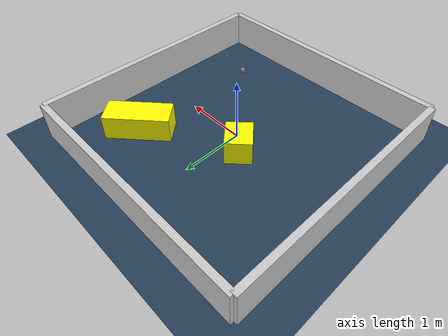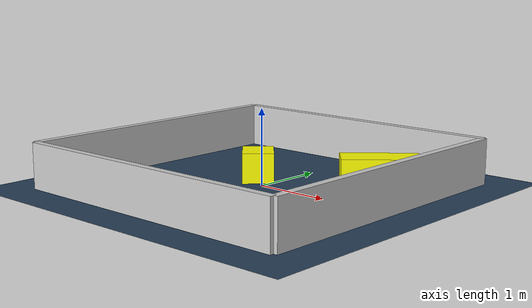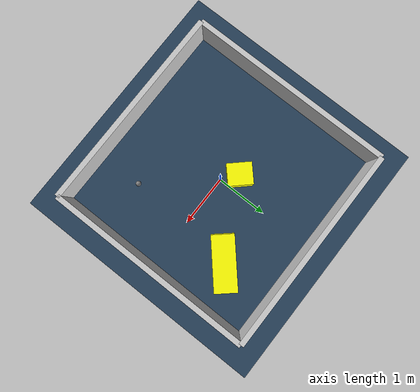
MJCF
<?xml version="1.0" ?>
<mujoco model="generated_environment">
  <option timestep="0.01" integrator="RK4" cone="elliptic"/>
  <default>
    <geom density="1"/>
  </default>
  <asset>
    <texture builtin="gradient" height="3072" rgb1="0.3 0.5 0.7" rgb2="0 0 0" type="skybox" width="512"/>
    <texture builtin="checker" height="300" mark="edge" markrgb="0.8 0.8 0.8" name="groundplane" rgb1="0.2 0.3 0.4" rgb2="0.1 0.2 0.3" type="2d" width="300"/>
    <material name="groundplane" reflectance="0.2" texrepeat="5 5" texture="groundplane" texuniform="true"/>
    <material name="robot" rgba="0.0 1.0 0.0 1"/>
  </asset>
  <worldbody>
    <light dir="0 0 -1" directional="true" pos="0 0 1.5"/>
    <geom condim="4" friction="1.0 0.005 0.001" material="groundplane" name="floor" size="0 0 0.05" type="plane"/>
    <body name="walls">
      <geom name="wall_1" condim="4" pos="-2.0 0.0 0.3" rgba="0.800000011920929 0.800000011920929 0.800000011920929 1.0" size="0.05 2.0 0.3" type="box"/>
      <geom name="wall_2" condim="4" pos="2.0 0.0 0.3" rgba="0.800000011920929 0.800000011920929 0.800000011920929 1.0" size="0.05 2.0 0.3" type="box"/>
      <geom name="wall_3" condim="4" pos="0.0 -2.0 0.3" rgba="0.800000011920929 0.800000011920929 0.800000011920929 1.0" size="2.0 0.05 0.3" type="box"/>
      <geom name="wall_4" condim="4" pos="0.0 2.0 0.3" rgba="0.800000011920929 0.800000011920929 0.800000011920929 1.0" size="2.0 0.05 0.3" type="box"/>
    </body>
    <body name="robot">
      <joint name="joint_x" type="slide" pos="0 0 0" axis="1 0 0"/>
      <joint name="joint_y" type="slide" pos="0 0 0" axis="0 1 0"/>
      <geom name="robot" type="sphere" pos="0.9879742145031725 -1.1221056162372212 0.2" size="0.05" mass="5." friction="1.0 0.005 0.0001" condim="4"/>
      <site name="sensor_ball"/>
    </body>
    <body name="obstacle_1_movable">
      <geom name="obstacle_1_movable" condim="4" pos="-0.2719070838575448 0.22769417169048634 0.2" euler="0 0 312.8084458618052" friction="1.0 0.005 0.001" rgba="1 1 0 1" size="0.23130093025129406 0.20434195876728234 0.2" type="box" mass="0.1"/>
      <joint type="free"/>
    </body>
    <body name="obstacle_2_movable">
      <geom name="obstacle_2_movable" condim="4" pos="1.1380137521499099 0.9770304179346723 0.2" euler="0 0 41.33595596816344" friction="1.0 0.005 0.001" rgba="1 1 0 1" size="0.5067272269953444 0.21149565122234326 0.2" type="box" mass="0.1"/>
      <joint type="free"/>
    </body>
  </worldbody>
  <actuator>
    <motor name="actuator_x" joint="joint_x" gear="1" ctrlrange="-1 1"/>
    <motor name="actuator_y" joint="joint_y" gear="1" ctrlrange="-1 1"/>
  </actuator>
</mujoco>
